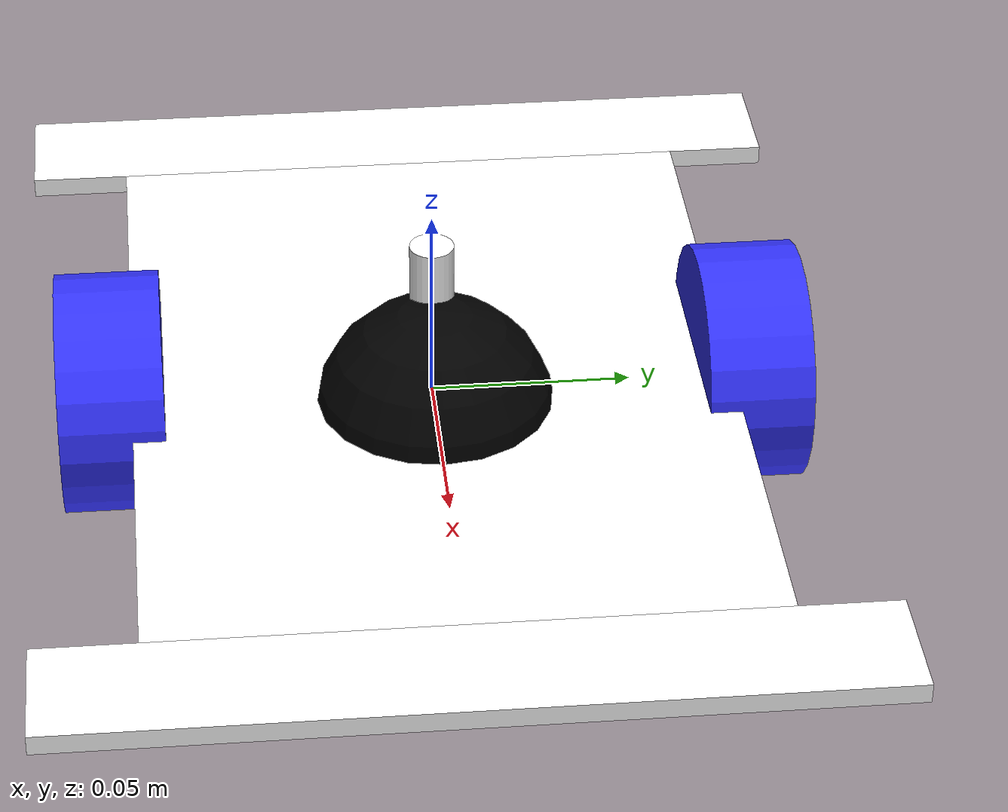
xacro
<?xml version="1.0"?>
<robot xmlns:xacro="http://www.ros.org/wiki/xacro" >

    <xacro:include filename ="inertial_macros.xacro"/>

    <material name ="white">
        <color rgba="1 1 1 1" />
    </material>

    <material name ="orange">
        <color rgba="1 0.3 0.1 1" />
    </material>

    <material name ="blue">
        <color rgba="0.2 0.2 1 1" />
    </material>

    <material name ="black">
        <color rgba="0 0 0 1" />
    </material>

    <link name="base_link">

    </link>

    <joint name="chassis_joint" type="fixed">
        <parent link= "base_link"/>
        <child link="midle_chassis"/>
        <origin xyz="0 0 0"/>
    </joint>

    <link name="midle_chassis">
        <visual>
            <origin xyz="0 0 0.0025"/>
            <geometry>
                <box size="0.2 0.15 0.005"/>
            </geometry>
            <material name="white"/>
        </visual>
        <collision>
            <origin xyz="0 0 0.0025"/>
            <geometry>
                <box size="0.2 0.15 0.005"/>
            </geometry>
        </collision>
        <xacro:inertial_box mass="0.015" x="0.2" y="0.15" z="0.005">
            <origin xyz= "0 0 0.0025" rpy="0 0 0"/>
        </xacro:inertial_box>

        <!-- front chassis -->
        <visual>
            <origin xyz="0.115 0 0.0025"/>
            <geometry>
                <box size="0.03 0.2 0.005"/>
            </geometry>
            <material name="white"/>
        </visual>
        <collision>
            <origin xyz="0.115 0 0.0025"/>
            <geometry>
                <box size="0.03 0.2 0.005"/>
            </geometry>
        </collision>
        <xacro:inertial_box mass="0.005" x="0.03" y="0.2" z="0.005">
            <origin xyz= "0.115 0 0.0025" rpy="0 0 0"/>
        </xacro:inertial_box>

        <!-- back chassis -->
        <visual>
            <origin xyz="-0.115 0 0.0025"/>
            <geometry>
                <box size="0.03 0.2 0.005"/>
            </geometry>
            <material name="white"/>
        </visual>
        <collision>
            <origin xyz="-0.115 0 0.0025"/>
            <geometry>
                <box size="0.03 0.2 0.005"/>
            </geometry>
        </collision>
        <xacro:inertial_box mass="0.005" x="0.03" y="0.2" z="0.005">
            <origin xyz= "-0.115 0 0.0025" rpy="0 0 0"/>
        </xacro:inertial_box>

        <!-- Front_Right_spacer -->
        <visual>
            <origin xyz="0 0 0.0225"/>
            <geometry>
                <cylinder radius = "0.0055" length="0.04"/>
            </geometry>
            <material name="white"/>
        </visual>
        <collision>
            <origin xyz="0 0 0.0225"/>
            <geometry>
                <cylinder radius = "0.0055" length="0.04"/>
            </geometry>
        </collision>
        <xacro:inertial_cylinder mass="0.005" length="0.04" radius="0.0055">
            <origin xyz= "0 0 0.0225" rpy="0 0 0"/>
        </xacro:inertial_cylinder>

        <!-- Front_Left_spacer -->
        <visual>
            <origin xyz="0 0 0.0225"/>
            <geometry>
                <cylinder radius = "0.0055" length="0.04"/>
            </geometry>
            <material name="white"/>
        </visual>
        <collision>
            <origin xyz="0 0 0.0225"/>
            <geometry>
                <cylinder radius = "0.0055" length="0.04"/>
            </geometry>
        </collision>
        <xacro:inertial_cylinder mass="0.005" length="0.04" radius="0.0055">
            <origin xyz= "0 0 0.0225" rpy="0 0 0"/>
        </xacro:inertial_cylinder>

        <!-- Back_Right_spacer -->
        <visual>
            <origin xyz="0 0 0.0225"/>
            <geometry>
                <cylinder radius = "0.0055" length="0.04"/>
            </geometry>
            <material name="white"/>
        </visual>
        <collision>
            <origin xyz="0 0 0.0225"/>
            <geometry>
                <cylinder radius = "0.0055" length="0.04"/>
            </geometry>
        </collision>
        <xacro:inertial_cylinder mass="0.005" length="0.04" radius="0.0055">
            <origin xyz= "0 0 0.0225" rpy="0 0 0"/>
        </xacro:inertial_cylinder>

        <!-- Back_left_spacer -->
        <visual>
            <origin xyz="0 0 0.0225"/>
            <geometry>
                <cylinder radius = "0.0055" length="0.04"/>
            </geometry>
            <material name="white"/>
        </visual>
        <collision>
            <origin xyz="0 0 0.0225"/>
            <geometry>
                <cylinder radius = "0.0055" length="0.04"/>
            </geometry>
        </collision>
        <xacro:inertial_cylinder mass="0.005" length="0.04" radius="0.0055">
            <origin xyz= "0 0 0.0225" rpy="0 0 0"/>
        </xacro:inertial_cylinder>

    </link>

    <!-- Left Wheel Link-->

    <joint name="left_wheel_joint" type="continuous">
        <parent link= "base_link"/>
        <child link="left_wheel"/>
        <origin xyz="-0.0055 0.08 0" rpy="-${pi/2} 0 0"/>
        <axis xyz="0 0 1"/>
        <limit effort="100" velocity="10.0"/>
        <dynamics damping="0.1" friction="0.1"/>
    </joint>

    <link name="left_wheel">
        <visual>
            <geometry>
                <cylinder radius="0.03" length="0.026"/>
            </geometry>
            <material name="blue"/>
        </visual>
        <collision>
            <geometry>
                <cylinder radius="0.03" length="0.026"/>
            </geometry>
        </collision>
        <xacro:inertial_cylinder mass="0.02" length="0.026" radius="0.03">
            <origin xyz= "0 0 0" rpy="0 0 0"/>
        </xacro:inertial_cylinder>
    </link>

     <!-- Right Wheel Link-->

    <joint name="right_wheel_joint" type="continuous">
        <parent link= "base_link"/>
        <child link="right_wheel"/>
        <origin xyz="-0.0055 -0.08 0" rpy="${pi/2} 0 0"/>
        <axis xyz="0 0 -1"/>
        <limit effort="100" velocity="10.0"/>
        <dynamics damping="0.1" friction="0.1"/>
    </joint>

    <link name="right_wheel">
        <visual>
            <geometry>
                <cylinder radius="0.03" length="0.026"/>
            </geometry>
            <material name="blue"/>
        </visual>
        <collision>
            <geometry>
                <cylinder radius="0.03" length="0.026"/>
            </geometry>
        </collision>
        <xacro:inertial_cylinder mass="0.02" length="0.026" radius="0.03">
            <origin xyz= "0 0 0" rpy="0 0 0"/>
        </xacro:inertial_cylinder>
    </link>

    <!--Caster Wheel Link -->
    <joint name="caster_wheel_joint" type="fixed">
        <parent link="midle_chassis"/>
        <child link="caster_wheel"/>
        <origin xyz="0.01 0 0"/>
    </joint>

    <link name="caster_wheel">
        <visual>
            <geometry>
                <sphere radius="0.03"/>
            </geometry>
            <material name="black"/>
        </visual>
        <collision>
            <geometry>
                <sphere radius="0.03"/>
            </geometry>
        </collision>
        <xacro:inertial_sphere mass="0.02" radius="0.03">
            <origin xyz="0 0 0" rpy="0 0 0"/>
        </xacro:inertial_sphere>
    </link>

</robot>
